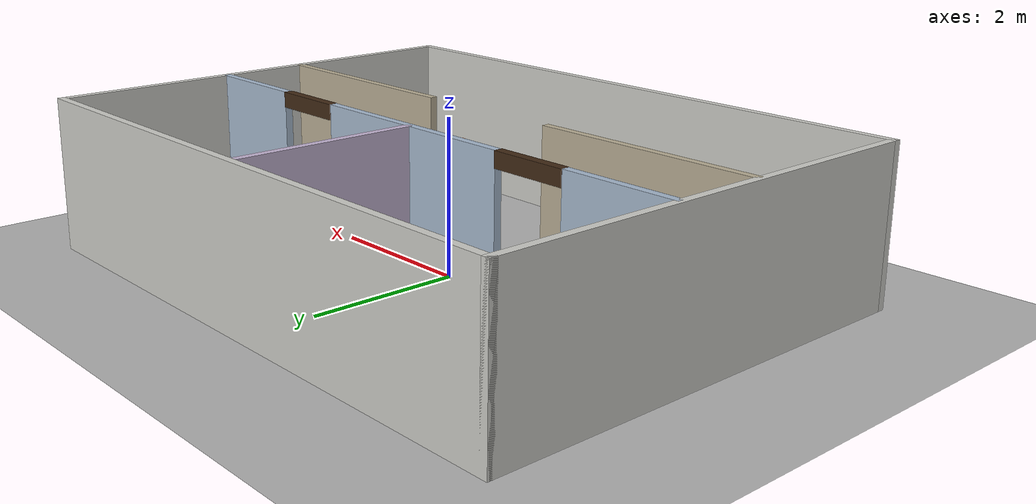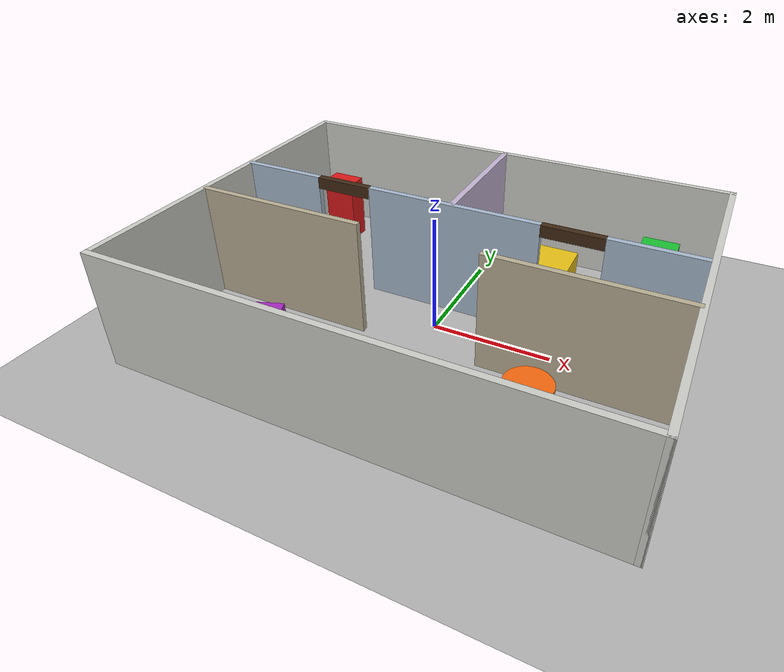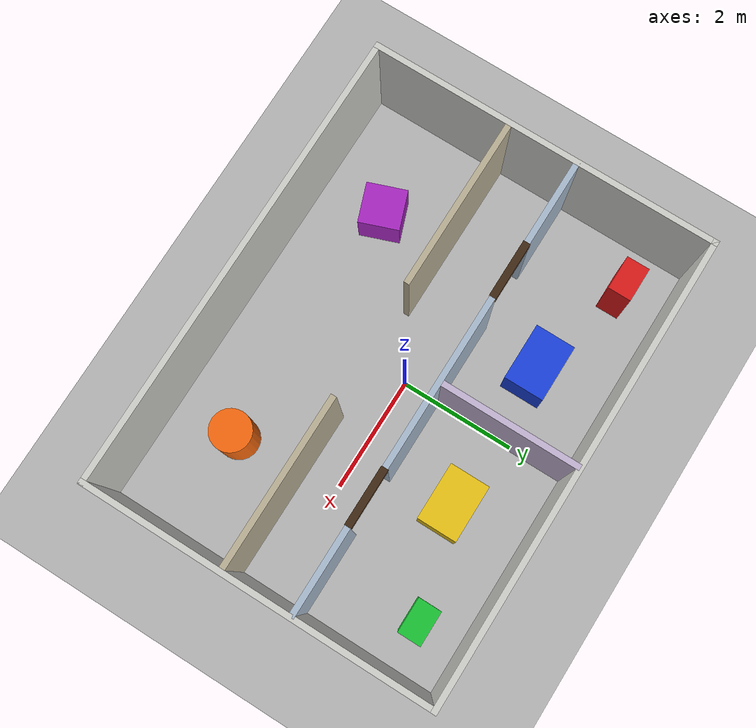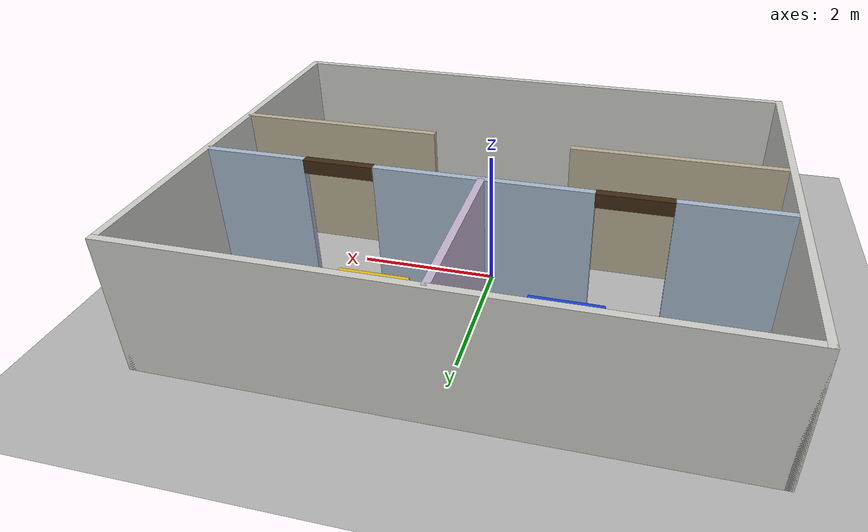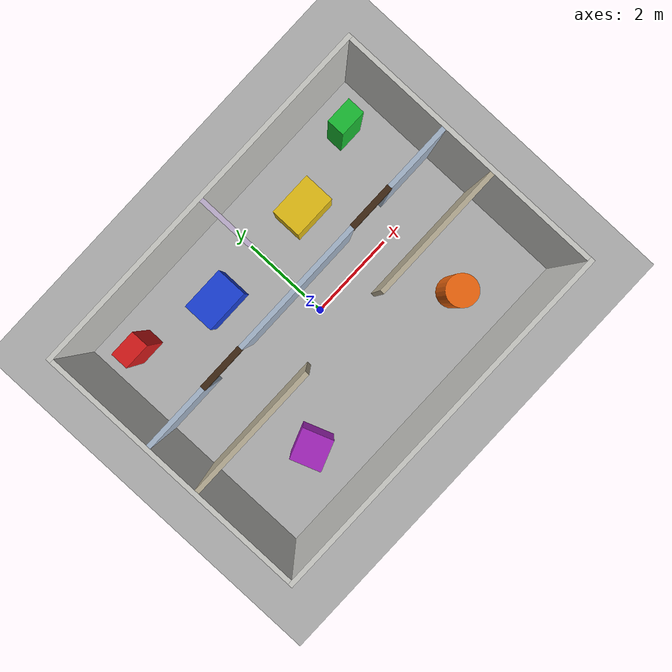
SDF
<?xml version="1.0"?>
<sdf version="1.6">
  <world name="wifibot_indoor_world">
       <!-- Physics -->
    <plugin
      filename="libignition-gazebo-physics-system.so"
      name="ignition::gazebo::systems::Physics">
    </plugin>

    <!-- Commands -->
    <plugin
      filename="libignition-gazebo-user-commands-system.so"
      name="ignition::gazebo::systems::UserCommands">
    </plugin>

    <!-- Scene -->
    <plugin
      filename="libignition-gazebo-scene-broadcaster-system.so"
      name="ignition::gazebo::systems::SceneBroadcaster">
    </plugin>

    <!-- Sensors -->
    <plugin
      filename="libignition-gazebo-sensors-system.so"
      name="ignition::gazebo::systems::Sensors">
      <render_engine>ogre2</render_engine>
    </plugin>
        <!-- Sun light -->
    <light name="sun" type="directional">
      <cast_shadows>true</cast_shadows>
      <pose>0 0 10 0 0 0</pose>
      <diffuse>0.8 0.8 0.8 1</diffuse>
      <specular>0.2 0.2 0.2 1</specular>
      <attenuation>
        <range>1000</range>
        <constant>0.9</constant>
        <linear>0.01</linear>
        <quadratic>0.001</quadratic>
      </attenuation>
      <direction>-0.5 0.1 -0.9</direction>
    </light>

    <!-- Ground -->
    <model name="ground_plane">
      <static>true</static>
      <link name="link">
        <collision name="collision">
          <geometry>
            <plane>
              <normal>0 0 1</normal>
              <size>8 6</size>
            </plane>
          </geometry>
        </collision>

        <visual name="visual">
          <geometry>
            <plane>
              <normal>0 0 1</normal>
              <size>8 6</size>
            </plane>
          </geometry>
          <material>
            <ambient>0.7 0.7 0.7 1</ambient>
            <diffuse>0.7 0.7 0.7 1</diffuse>
          </material>
        </visual>
      </link>
    </model>

    <physics name="default_physics" type="ode">
      <max_step_size>0.001</max_step_size>
      <real_time_factor>1.0</real_time_factor>
      <real_time_update_rate>1000</real_time_update_rate>
    </physics>

    <scene>
      <ambient>0.65 0.65 0.65 1</ambient>
      <background>0.75 0.82 0.90 1</background>
      <shadows>true</shadows>
    </scene>

    <!-- Helper convention: wall pose is x y z roll pitch yaw -->
    <!-- Outer boundary: 8 m x 6 m, wall thickness 0.10 m, height 2 m -->

    <model name="outer_wall_north">
      <static>true</static><pose>0 3 1 0 0 0</pose>
      <link name="link">
        <collision name="collision"><geometry><box><size>8.1 0.1 2</size></box></geometry></collision>
        <visual name="visual"><geometry><box><size>8.1 0.1 2</size></box></geometry><material><ambient>0.80 0.80 0.78 1</ambient><diffuse>0.80 0.80 0.78 1</diffuse></material></visual>
      </link>
    </model>

    <model name="outer_wall_south">
      <static>true</static><pose>0 -3 1 0 0 0</pose>
      <link name="link">
        <collision name="collision"><geometry><box><size>8.1 0.1 2</size></box></geometry></collision>
        <visual name="visual"><geometry><box><size>8.1 0.1 2</size></box></geometry><material><ambient>0.80 0.80 0.78 1</ambient><diffuse>0.80 0.80 0.78 1</diffuse></material></visual>
      </link>
    </model>

    <model name="outer_wall_west">
      <static>true</static><pose>-4 0 1 0 0 0</pose>
      <link name="link">
        <collision name="collision"><geometry><box><size>0.1 6.1 2</size></box></geometry></collision>
        <visual name="visual"><geometry><box><size>0.1 6.1 2</size></box></geometry><material><ambient>0.80 0.80 0.78 1</ambient><diffuse>0.80 0.80 0.78 1</diffuse></material></visual>
      </link>
    </model>

    <model name="outer_wall_east">
      <static>true</static><pose>4 0 1 0 0 0</pose>
      <link name="link">
        <collision name="collision"><geometry><box><size>0.1 6.1 2</size></box></geometry></collision>
        <visual name="visual"><geometry><box><size>0.1 6.1 2</size></box></geometry><material><ambient>0.80 0.80 0.78 1</ambient><diffuse>0.80 0.80 0.78 1</diffuse></material></visual>
      </link>
    </model>

    <!-- Main corridor: x direction, from x=-4 to x=4, width 1.2 m -->
    <!-- North corridor wall has two 1 m door openings centered at x=-2 and x=2 -->

    <model name="north_corridor_wall_left">
      <static>true</static><pose>-3.25 0.6 1 0 0 0</pose>
      <link name="link"><collision name="collision"><geometry><box><size>1.5 0.1 2</size></box></geometry></collision><visual name="visual"><geometry><box><size>1.5 0.1 2</size></box></geometry><material><ambient>0.65 0.72 0.80 1</ambient><diffuse>0.65 0.72 0.80 1</diffuse></material></visual></link>
    </model>

    <model name="north_corridor_wall_center">
      <static>true</static><pose>0 0.6 1 0 0 0</pose>
      <link name="link"><collision name="collision"><geometry><box><size>3.0 0.1 2</size></box></geometry></collision><visual name="visual"><geometry><box><size>3.0 0.1 2</size></box></geometry><material><ambient>0.65 0.72 0.80 1</ambient><diffuse>0.65 0.72 0.80 1</diffuse></material></visual></link>
    </model>

    <model name="north_corridor_wall_right">
      <static>true</static><pose>3.25 0.6 1 0 0 0</pose>
      <link name="link"><collision name="collision"><geometry><box><size>1.5 0.1 2</size></box></geometry></collision><visual name="visual"><geometry><box><size>1.5 0.1 2</size></box></geometry><material><ambient>0.65 0.72 0.80 1</ambient><diffuse>0.65 0.72 0.80 1</diffuse></material></visual></link>
    </model>

    <!-- South corridor boundary with a 2 m open entrance to room 3 -->
    <model name="south_corridor_wall_left">
      <static>true</static><pose>-2.5 -0.6 1 0 0 0</pose>
      <link name="link"><collision name="collision"><geometry><box><size>3.0 0.1 2</size></box></geometry></collision><visual name="visual"><geometry><box><size>3.0 0.1 2</size></box></geometry><material><ambient>0.72 0.68 0.58 1</ambient><diffuse>0.72 0.68 0.58 1</diffuse></material></visual></link>
    </model>

    <model name="south_corridor_wall_right">
      <static>true</static><pose>2.5 -0.6 1 0 0 0</pose>
      <link name="link"><collision name="collision"><geometry><box><size>3.0 0.1 2</size></box></geometry></collision><visual name="visual"><geometry><box><size>3.0 0.1 2</size></box></geometry><material><ambient>0.72 0.68 0.58 1</ambient><diffuse>0.72 0.68 0.58 1</diffuse></material></visual></link>
    </model>

    <!-- Partition between room 1 and room 2 -->
    <model name="north_room_partition">
      <static>true</static><pose>0 1.8 1 0 0 0</pose>
      <link name="link"><collision name="collision"><geometry><box><size>0.1 2.4 2</size></box></geometry></collision><visual name="visual"><geometry><box><size>0.1 2.4 2</size></box></geometry><material><ambient>0.76 0.70 0.82 1</ambient><diffuse>0.76 0.70 0.82 1</diffuse></material></visual></link>
    </model>

    <!-- Door headers visually mark two 1 m-wide openings -->
    <model name="door_header_room1">
      <static>true</static><pose>-2 0.6 1.9 0 0 0</pose>
      <link name="link"><collision name="collision"><geometry><box><size>1.0 0.12 0.2</size></box></geometry></collision><visual name="visual"><geometry><box><size>1.0 0.12 0.2</size></box></geometry><material><ambient>0.25 0.16 0.08 1</ambient><diffuse>0.25 0.16 0.08 1</diffuse></material></visual></link>
    </model>

    <model name="door_header_room2">
      <static>true</static><pose>2 0.6 1.9 0 0 0</pose>
      <link name="link"><collision name="collision"><geometry><box><size>1.0 0.12 0.2</size></box></geometry></collision><visual name="visual"><geometry><box><size>1.0 0.12 0.2</size></box></geometry><material><ambient>0.25 0.16 0.08 1</ambient><diffuse>0.25 0.16 0.08 1</diffuse></material></visual></link>
    </model>

    <!-- Six colorful static objects for visual SLAM features -->
    <model name="red_cabinet">
      <static>true</static><pose>-3.1 2.2 0.6 0 0 0</pose>
      <link name="link"><collision name="collision"><geometry><box><size>0.6 0.4 1.2</size></box></geometry></collision><visual name="visual"><geometry><box><size>0.6 0.4 1.2</size></box></geometry><material><ambient>0.85 0.10 0.10 1</ambient><diffuse>0.85 0.10 0.10 1</diffuse></material></visual></link>
    </model>

    <model name="blue_table">
      <static>true</static><pose>-1.3 1.7 0.4 0 0 0</pose>
      <link name="link"><collision name="collision"><geometry><box><size>1.0 0.7 0.8</size></box></geometry></collision><visual name="visual"><geometry><box><size>1.0 0.7 0.8</size></box></geometry><material><ambient>0.10 0.25 0.85 1</ambient><diffuse>0.10 0.25 0.85 1</diffuse></material></visual></link>
    </model>

    <model name="green_cabinet">
      <static>true</static><pose>3.1 2.2 0.6 0 0 0</pose>
      <link name="link"><collision name="collision"><geometry><box><size>0.6 0.4 1.2</size></box></geometry></collision><visual name="visual"><geometry><box><size>0.6 0.4 1.2</size></box></geometry><material><ambient>0.10 0.75 0.20 1</ambient><diffuse>0.10 0.75 0.20 1</diffuse></material></visual></link>
    </model>

    <model name="yellow_table">
      <static>true</static><pose>1.3 1.7 0.4 0 0 0</pose>
      <link name="link"><collision name="collision"><geometry><box><size>1.0 0.7 0.8</size></box></geometry></collision><visual name="visual"><geometry><box><size>1.0 0.7 0.8</size></box></geometry><material><ambient>0.90 0.75 0.08 1</ambient><diffuse>0.90 0.75 0.08 1</diffuse></material></visual></link>
    </model>

    <model name="purple_box">
      <static>true</static><pose>-2.2 -1.8 0.35 0 0 0.35</pose>
      <link name="link"><collision name="collision"><geometry><box><size>0.7 0.7 0.7</size></box></geometry></collision><visual name="visual"><geometry><box><size>0.7 0.7 0.7</size></box></geometry><material><ambient>0.65 0.15 0.75 1</ambient><diffuse>0.65 0.15 0.75 1</diffuse></material></visual></link>
    </model>

    <model name="orange_cylinder">
      <static>true</static><pose>2.2 -1.8 0.5 0 0 0</pose>
      <link name="link"><collision name="collision"><geometry><cylinder><radius>0.35</radius><length>1.0</length></cylinder></geometry></collision><visual name="visual"><geometry><cylinder><radius>0.35</radius><length>1.0</length></cylinder></geometry><material><ambient>0.95 0.40 0.05 1</ambient><diffuse>0.95 0.40 0.05 1</diffuse></material></visual></link>
    </model>

  </world>
</sdf>
